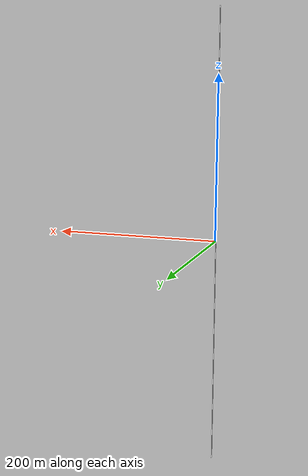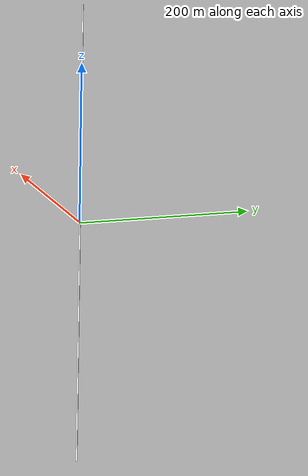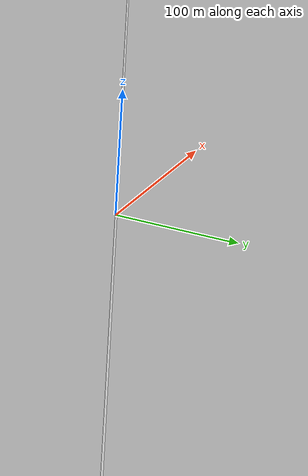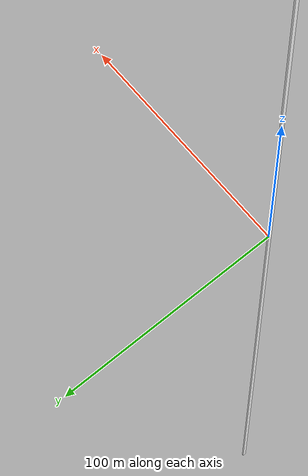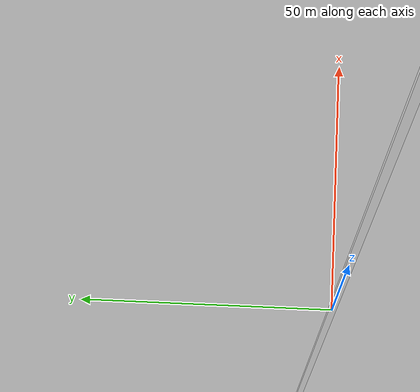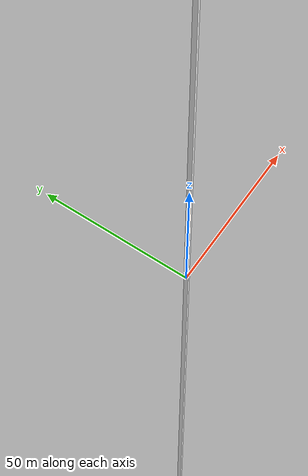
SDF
<?xml version='1.0'?>
<sdf version='1.6'>
  <model name='race_track7'>
    <static>true</static>
    <link name='link'>
      <visual name='visual'>
        <geometry>
          <box>
            <size>0.774 1.462 000553</size>
          </box>
        </geometry>
        <material>
          <script>
            <name>RaceTrack7/track7</name>
	    <uri>model://racetrack7/materials/scripts</uri>
            <uri>model://racetrack7/materials/textures</uri>
          </script>
          <ambient>1 1 1 1</ambient>
          <diffuse>1 1 1 1</diffuse>
          <specular>0.01 0.01 0.01 1</specular>
          <emissive>1 1 1 1</emissive>
        </material>
        <transparency>0</transparency>
      </visual>
      <collision name='collision'>
        <geometry>
          <box>
            <size>0.774 1.462 0.000553</size>
          </box>
        </geometry>
	<surface>
          <friction>
            <ode>
              <mu>100</mu>
              <mu2>50</mu2>
            </ode>
          </friction>
        </surface>
      </collision>
    </link>
  </model>
</sdf>
